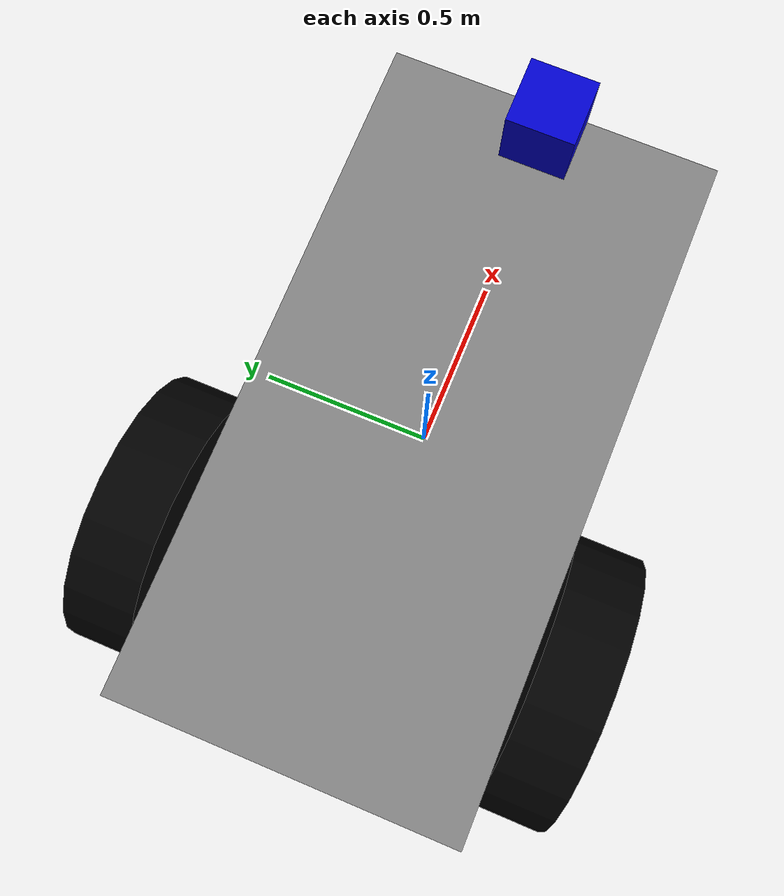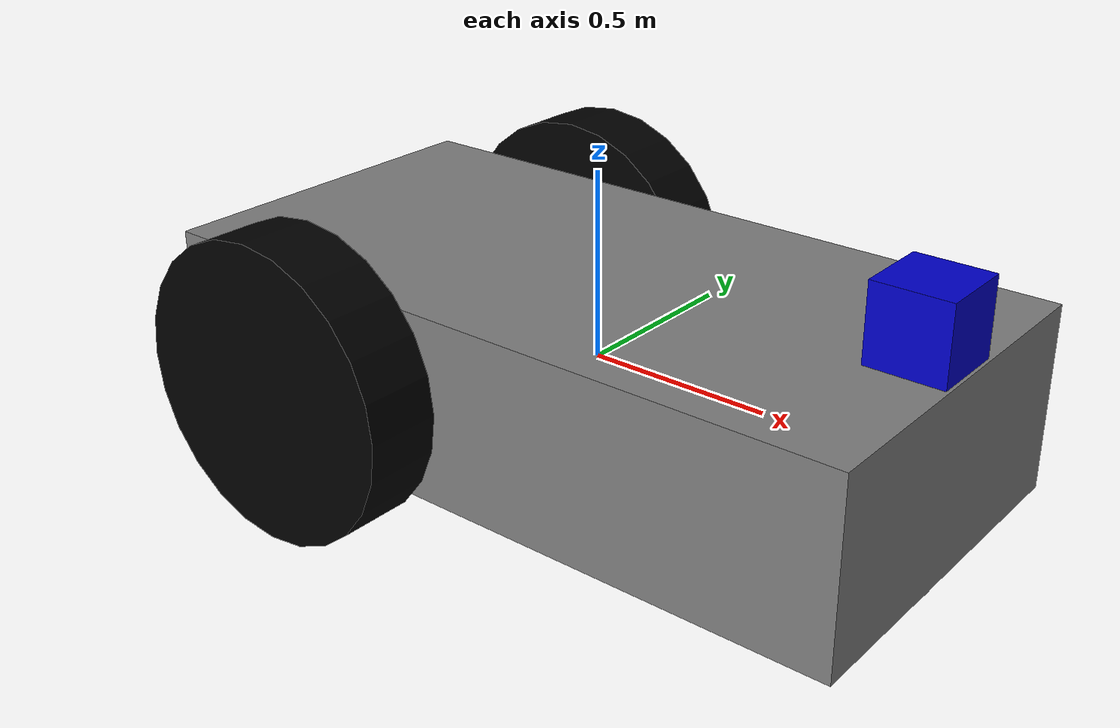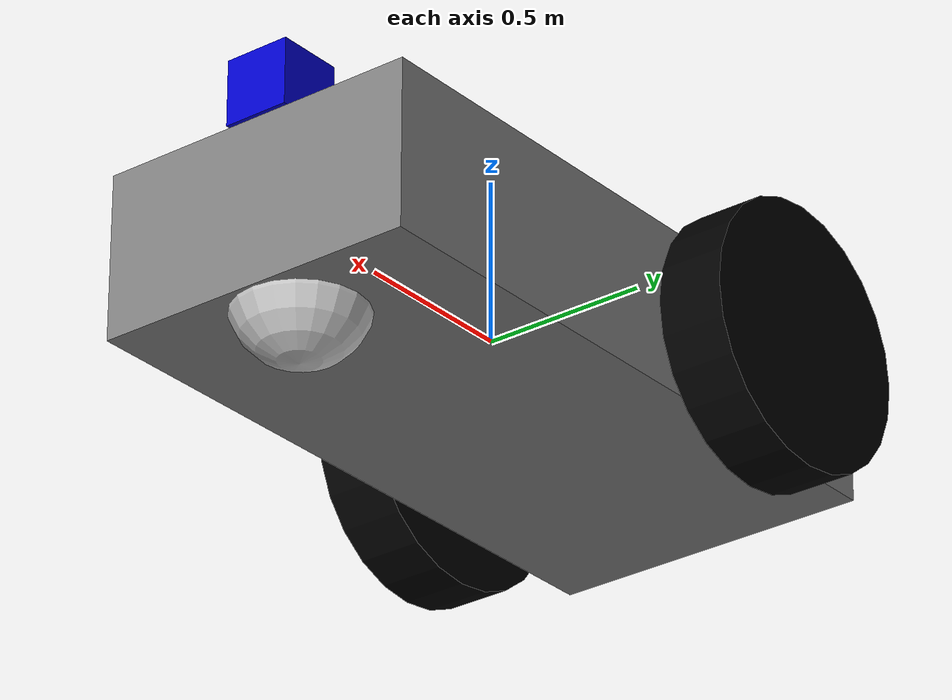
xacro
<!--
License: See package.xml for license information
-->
<?xml version="1.0"?>

<robot name="aruco_bot" xmlns:xacro="http://www.ros.org/wiki/xacro">

  <!-- External File Includes                    -->

  <xacro:include filename="$(find aruco_visual_servoing)/urdf/aruco_bot_diff.gazebo.xacro"/>
  <xacro:include filename="$(find aruco_visual_servoing)/urdf/materials.xacro"/>

  <!-- Robot Geometry Parameters                 -->

  <xacro:property name="WHEEL_RADIUS" value="0.4"/>        <!-- meters -->
  <xacro:property name="WHEEL_WIDTH" value="0.2"/>         <!-- meters -->
  <xacro:property name="CASTER_RADIUS" value="0.2"/>       <!-- meters -->
  <xacro:property name="BASE_LENGTH" value="2.0"/>         <!-- meters -->
  <xacro:property name="BASE_WIDTH" value="1.0"/>          <!-- meters -->
  <xacro:property name="BASE_HEIGHT" value="0.5"/>         <!-- meters -->
  <xacro:property name="WHEEL_SEPARATION" value="${BASE_WIDTH + WHEEL_WIDTH}"/>

  <!-- Robot Mass Properties                     -->

  <xacro:property name="BASE_MASS" value="5.0"/>           <!-- kilograms -->
  <xacro:property name="WHEEL_MASS" value="2.0"/>          <!-- kilograms -->
  <xacro:property name="CASTER_MASS" value="1.0"/>         <!-- kilograms -->

  <!-- Mathematical Constants                    -->

  <xacro:property name="PI" value="3.14159265359"/>

  <!-- Base Footprint and Chassis                -->

  <link name="base_footprint"/>

  <joint name="base_joint" type="fixed">
    <parent link="base_footprint"/>
    <child link="base_link"/>
    <origin xyz="0.0 0 0" rpy="0 0 0.0"/>
  </joint>

  <link name="base_link">
    <visual>
      <geometry>
        <box size="${BASE_LENGTH} ${BASE_WIDTH} ${BASE_HEIGHT}"/>
      </geometry>
      <material name="grey"/>
    </visual>
    <collision>
      <geometry>
        <box size="${BASE_LENGTH} ${BASE_WIDTH} ${BASE_HEIGHT}"/>
      </geometry>
    </collision>
    <inertial>
      <mass value="${BASE_MASS}"/>
      <inertia ixx="0.83333" ixy="0" ixz="0" iyy="1.66667" iyz="0" izz="1.66667"/>
    </inertial>
  </link>

  <!-- Wheel Links                               -->

  <!-- Left Wheel -->
  <link name="left_wheel">
    <visual>
      <geometry>
        <cylinder radius="${WHEEL_RADIUS}" length="${WHEEL_WIDTH}"/>
      </geometry>
      <material name="black"/>
    </visual>
    <collision>
      <geometry>
        <cylinder radius="${WHEEL_RADIUS}" length="${WHEEL_WIDTH}"/>
      </geometry>
    </collision>
    <inertial>
      <mass value="${WHEEL_MASS}"/>
      <inertia ixx="0.145833" ixy="0" ixz="0" iyy="0.145833" iyz="0" izz="0.125"/>
    </inertial>
  </link>

  <!-- Right Wheel -->
  <link name="right_wheel">
    <visual>
      <geometry>
        <cylinder radius="${WHEEL_RADIUS}" length="${WHEEL_WIDTH}"/>
      </geometry>
      <material name="black"/>
    </visual>
    <collision>
      <geometry>
        <cylinder radius="${WHEEL_RADIUS}" length="${WHEEL_WIDTH}"/>
      </geometry>
    </collision>
    <inertial>
      <mass value="${WHEEL_MASS}"/>
      <inertia ixx="0.145833" ixy="0" ixz="0" iyy="0.145833" iyz="0" izz="0.125"/>
    </inertial>
  </link>

  <!-- Caster Wheel Link                         -->

  <link name="caster">
    <visual>
      <geometry>
        <sphere radius="${CASTER_RADIUS}"/>
      </geometry>
      <material name="silver"/>
    </visual>
    <collision>
      <geometry>
        <sphere radius="${CASTER_RADIUS}"/>
      </geometry>
    </collision>
    <inertial>
      <mass value="${CASTER_MASS}"/>
      <inertia ixx="0.1" ixy="0" ixz="0" iyy="0.1" iyz="0" izz="0.1"/>
    </inertial>
  </link>

  <!-- Camera Links                              -->

  <!-- Camera Physical Link -->
  <link name="camera_link">
    <visual>
      <geometry>
        <box size="0.2 0.2 0.2"/>
      </geometry>
      <material name="blue"/>
    </visual>
    <collision>
      <geometry>
        <box size="0.2 0.2 0.2"/>
      </geometry>
    </collision>
    <inertial>
      <mass value="0.1"/>
      <inertia ixx="0.001" ixy="0" ixz="0" iyy="0.001" iyz="0" izz="0.001"/>
    </inertial>
  </link>

  <!-- Camera Optical Frame (aligned with camera sensor coordinate system) -->
  <link name="camera_link_optical"/>

  <!-- Robot Joints                              -->

  <!-- Left Wheel Joint (continuous rotation for locomotion) -->
  <joint name="left_wheel_joint" type="continuous">
    <parent link="base_link"/>
    <child link="left_wheel"/>
    <origin xyz="-0.5 ${WHEEL_SEPARATION/2} 0" rpy="-${PI/2} 0 0"/>
    <axis xyz="0 0 1"/>
    <limit effort="100" velocity="10.0"/>
  </joint>

  <!-- Right Wheel Joint (continuous rotation for locomotion) -->
  <joint name="right_wheel_joint" type="continuous">
    <parent link="base_link"/>
    <child link="right_wheel"/>
    <origin xyz="-0.5 -${WHEEL_SEPARATION/2} 0" rpy="-${PI/2} 0 0"/>
    <axis xyz="0 0 1"/>
    <limit effort="100" velocity="10.0"/>
  </joint>

  <!-- Caster Wheel Joint (fixed orientation, free to roll) -->
  <joint name="caster_joint" type="fixed">
    <parent link="base_link"/>
    <child link="caster"/>
    <origin xyz="0.8 0 -0.2" rpy="0 0 0"/>
  </joint>

  <!-- Camera Mounting Joint -->
  <joint name="camera_joint" type="fixed">
    <parent link="base_link"/>
    <child link="camera_link"/>
    <origin xyz="0.9 0 0.36" rpy="0 0 0"/>
  </joint>

  <!-- Camera Optical Frame Transformation (ROS standard camera frame alignment) -->
  <joint type="fixed" name="camera_optical_joint">
    <origin xyz="0 0 0" rpy="-${PI/2} 0 -${PI/2}"/>
    <child link="camera_link_optical"/>
    <parent link="camera_link"/>
  </joint>

</robot>

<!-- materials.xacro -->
<robot xmlns:xacro="http://www.ros.org/wiki/xacro">

  <!-- Basic Monochrome Materials                -->

  <material name="black">
    <color rgba="0.0 0.0 0.0 1.0"/>
  </material>

  <material name="white">
    <color rgba="1.0 1.0 1.0 1.0"/>
  </material>

  <material name="grey">
    <color rgba="0.5 0.5 0.5 1.0"/>
  </material>

  <material name="silver">
    <color rgba="0.75 0.75 0.75 1.0"/>
  </material>

  <!-- Primary Color Materials                   -->

  <material name="red">
    <color rgba="0.8 0.0 0.0 1.0"/>
  </material>

  <material name="green">
    <color rgba="0.0 0.8 0.0 1.0"/>
  </material>

  <material name="blue">
    <color rgba="0.0 0.0 0.8 1.0"/>
  </material>

  <!-- Secondary Color Materials                 -->

  <material name="orange">
    <color rgba="1.0 0.423 0.039 1.0"/>
  </material>

  <material name="brown">
    <color rgba="0.871 0.812 0.765 1.0"/>
  </material>

</robot>
